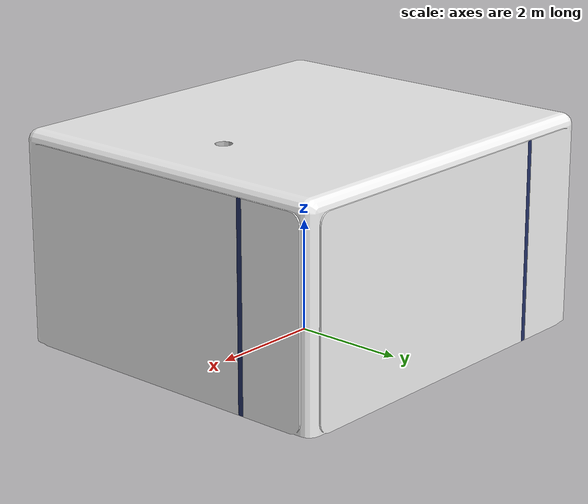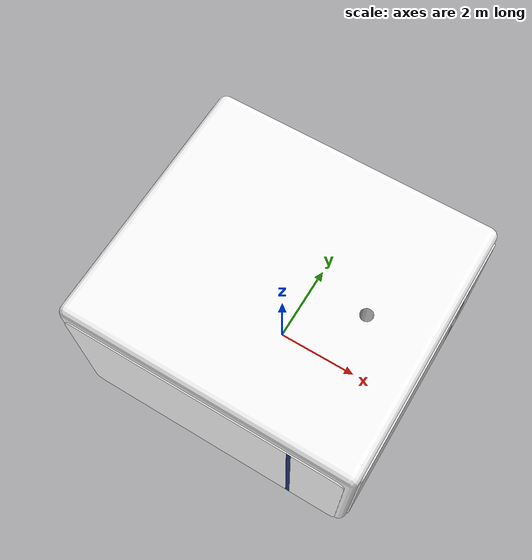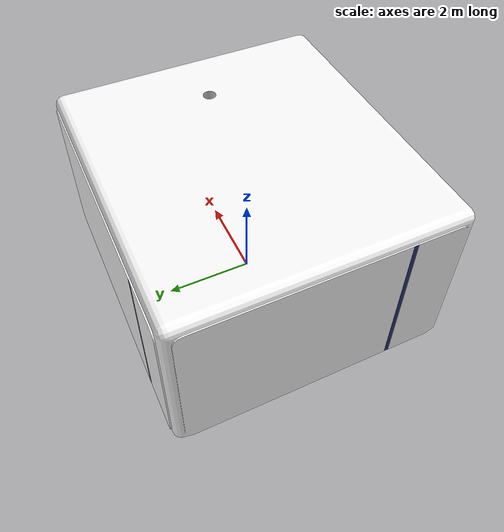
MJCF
<mujoco model="cabinet_ac">
  <default>
    <default class="visual">
      <geom group="2" type="mesh" contype="0" conaffinity="0"/>
    </default>
    <default class="collision">
      <geom group="3" type="mesh"/>
    </default>
  </default>
  <asset>
    <material name="material_cabinet_ac_0" specular="0.20000000000000004" shininess="1.0" rgba="0.74901961 0.74901961 0.74901961 1.0"/>
    <material name="material_cabinet_ac_1" specular="0.20000000000000004" shininess="1.0" rgba="0.96078431 0.96078431 0.96078431 1.0"/>
    <material name="material_cabinet_ac_2" specular="0.20000000000000004" shininess="1.0" rgba="0.13333333 0.18823529 0.40000000 1.0"/>
    <mesh file="cabinet_ac_0.obj"/>
    <mesh file="cabinet_ac_1.obj"/>
    <mesh file="cabinet_ac_2.obj"/>
  </asset>
  <worldbody>
    <body name="cabinet_ac">
      <geom mesh="cabinet_ac_0" material="material_cabinet_ac_2" class="visual"/>
      <geom mesh="cabinet_ac_1" material="material_cabinet_ac_1" class="visual"/>
      <geom mesh="cabinet_ac_2" material="material_cabinet_ac_0" class="visual"/>
      <geom mesh="cabinet_ac_0" class="collision"/>
      <geom mesh="cabinet_ac_1" class="collision"/>
      <geom mesh="cabinet_ac_2" class="collision"/>
    </body>
  </worldbody>
</mujoco>
